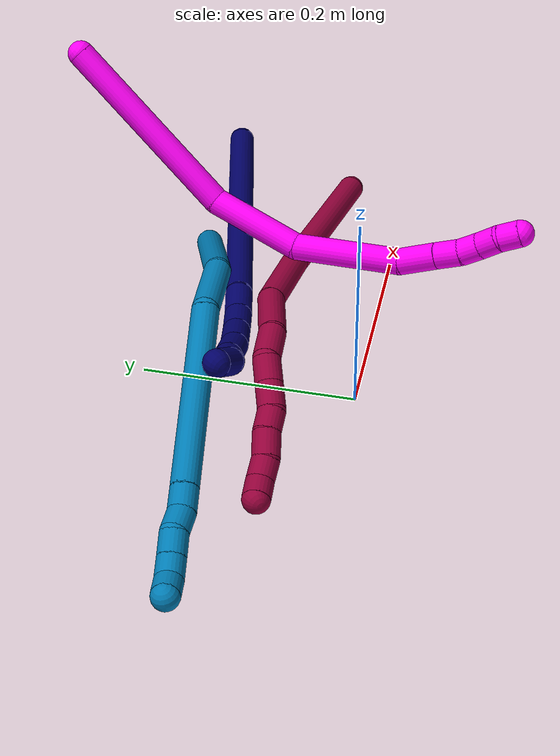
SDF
<sdf version="1.7">
 <world name="default">
  <model name="7">
   <static>0</static>
   <link name="7">
    <collision name="collision-cylinder-e_1_1_4">
     <pose>-0.103355 0.018054 0.121136 -0.147949 -0.700941 0.05417</pose>
     <geometry><cylinder><radius>0.0125</radius><length>0.320513</length></cylinder></geometry>
     <surface>
      <friction><ode><mu>1.16</mu><mu2>1.16</mu2><slip1>0</slip1><slip2>0</slip2></ode></friction>
      <contact><ode><kp>1e+06</kp><kd>1</kd><max_vel>0</max_vel><min_depth>0.001</min_depth></ode></contact>
     </surface>
    </collision>
    <visual name="visual-cylinder-e_1_1_4">
     <pose>-0.103355 0.018054 0.121136 -0.147949 -0.700941 0.05417</pose>
     <geometry><cylinder><radius>0.0125</radius><length>0.320513</length></cylinder></geometry>
     <material><ambient>0.003922 0 0.403922 1</ambient></material>
    </visual>
    <collision name="collision-cylinder-e_2_4_5">
     <pose>-0.216743 0.035461 0.253887 0.05562 -0.711643 -0.020675</pose>
     <geometry><cylinder><radius>0.0125</radius><length>0.030725</length></cylinder></geometry>
     <surface>
      <friction><ode><mu>1.16</mu><mu2>1.16</mu2><slip1>0</slip1><slip2>0</slip2></ode></friction>
      <contact><ode><kp>1e+06</kp><kd>1</kd><max_vel>0</max_vel><min_depth>0.001</min_depth></ode></contact>
     </surface>
    </collision>
    <visual name="visual-cylinder-e_2_4_5">
     <pose>-0.216743 0.035461 0.253887 0.05562 -0.711643 -0.020675</pose>
     <geometry><cylinder><radius>0.0125</radius><length>0.030725</length></cylinder></geometry>
     <material><ambient>0.003922 0 0.403922 1</ambient></material>
    </visual>
    <collision name="collision-cylinder-e_3_5_6">
     <pose>-0.23638 0.036585 0.27579 -0.170504 -0.743816 0.066644</pose>
     <geometry><cylinder><radius>0.0125</radius><length>0.028367</length></cylinder></geometry>
     <surface>
      <friction><ode><mu>1.16</mu><mu2>1.16</mu2><slip1>0</slip1><slip2>0</slip2></ode></friction>
      <contact><ode><kp>1e+06</kp><kd>1</kd><max_vel>0</max_vel><min_depth>0.001</min_depth></ode></contact>
     </surface>
    </collision>
    <visual name="visual-cylinder-e_3_5_6">
     <pose>-0.23638 0.036585 0.27579 -0.170504 -0.743816 0.066644</pose>
     <geometry><cylinder><radius>0.0125</radius><length>0.028367</length></cylinder></geometry>
     <material><ambient>0.003922 0 0.403922 1</ambient></material>
    </visual>
    <collision name="collision-cylinder-e_4_6_7">
     <pose>-0.257594 0.0436 0.298169 -0.409143 -0.722124 0.156371</pose>
     <geometry><cylinder><radius>0.0125</radius><length>0.03513</length></cylinder></geometry>
     <surface>
      <friction><ode><mu>1.16</mu><mu2>1.16</mu2><slip1>0</slip1><slip2>0</slip2></ode></friction>
      <contact><ode><kp>1e+06</kp><kd>1</kd><max_vel>0</max_vel><min_depth>0.001</min_depth></ode></contact>
     </surface>
    </collision>
    <visual name="visual-cylinder-e_4_6_7">
     <pose>-0.257594 0.0436 0.298169 -0.409143 -0.722124 0.156371</pose>
     <geometry><cylinder><radius>0.0125</radius><length>0.03513</length></cylinder></geometry>
     <material><ambient>0.003922 0 0.403922 1</ambient></material>
    </visual>
    <collision name="collision-cylinder-e_5_7_8">
     <pose>-0.281068 0.054936 0.320015 -0.558375 -0.800983 0.241559</pose>
     <geometry><cylinder><radius>0.0125</radius><length>0.033046</length></cylinder></geometry>
     <surface>
      <friction><ode><mu>1.16</mu><mu2>1.16</mu2><slip1>0</slip1><slip2>0</slip2></ode></friction>
      <contact><ode><kp>1e+06</kp><kd>1</kd><max_vel>0</max_vel><min_depth>0.001</min_depth></ode></contact>
     </surface>
    </collision>
    <visual name="visual-cylinder-e_5_7_8">
     <pose>-0.281068 0.054936 0.320015 -0.558375 -0.800983 0.241559</pose>
     <geometry><cylinder><radius>0.0125</radius><length>0.033046</length></cylinder></geometry>
     <material><ambient>0.003922 0 0.403922 1</ambient></material>
    </visual>
    <collision name="collision-cylinder-e_6_8_9">
     <pose>-0.298752 0.066431 0.337796 -0.59229 -0.541524 0.168985</pose>
     <geometry><cylinder><radius>0.0125</radius><length>0.022583</length></cylinder></geometry>
     <surface>
      <friction><ode><mu>1.16</mu><mu2>1.16</mu2><slip1>0</slip1><slip2>0</slip2></ode></friction>
      <contact><ode><kp>1e+06</kp><kd>1</kd><max_vel>0</max_vel><min_depth>0.001</min_depth></ode></contact>
     </surface>
    </collision>
    <visual name="visual-cylinder-e_6_8_9">
     <pose>-0.298752 0.066431 0.337796 -0.59229 -0.541524 0.168985</pose>
     <geometry><cylinder><radius>0.0125</radius><length>0.022583</length></cylinder></geometry>
     <material><ambient>0.003922 0 0.403922 1</ambient></material>
    </visual>
    <collision name="collision-cylinder-e_7_9_2">
     <pose>-0.316227 0.079724 0.350456 -1.04 -0.905139 0.543042</pose>
     <geometry><cylinder><radius>0.0125</radius><length>0.029637</length></cylinder></geometry>
     <surface>
      <friction><ode><mu>1.16</mu><mu2>1.16</mu2><slip1>0</slip1><slip2>0</slip2></ode></friction>
      <contact><ode><kp>1e+06</kp><kd>1</kd><max_vel>0</max_vel><min_depth>0.001</min_depth></ode></contact>
     </surface>
    </collision>
    <visual name="visual-cylinder-e_7_9_2">
     <pose>-0.316227 0.079724 0.350456 -1.04 -0.905139 0.543042</pose>
     <geometry><cylinder><radius>0.0125</radius><length>0.029637</length></cylinder></geometry>
     <material><ambient>0.003922 0 0.403922 1</ambient></material>
    </visual>
    <collision name="collision-sphere-2">
     <pose>-0.327882 0.087617 0.355089 0 -0 0</pose>
     <geometry><sphere><radius>0.0125</radius></sphere></geometry>
     <surface>
      <friction><ode><mu>1.16</mu><mu2>1.16</mu2><slip1>0</slip1><slip2>0</slip2></ode></friction>
      <contact><ode><kp>1e+06</kp><kd>1</kd><max_vel>0</max_vel><min_depth>0.001</min_depth></ode></contact>
     </surface>
    </collision>
    <visual name="visual-sphere-2">
     <pose>-0.327882 0.087617 0.355089 0 -0 0</pose>
     <geometry><sphere><radius>0.0125</radius></sphere></geometry>
     <material><ambient>0.003922 0 0.403922 1</ambient></material>
    </visual>
    <collision name="collision-sphere-9">
     <pose>-0.304572 0.071832 0.345823 0 -0 0</pose>
     <geometry><sphere><radius>0.0125</radius></sphere></geometry>
     <surface>
      <friction><ode><mu>1.16</mu><mu2>1.16</mu2><slip1>0</slip1><slip2>0</slip2></ode></friction>
      <contact><ode><kp>1e+06</kp><kd>1</kd><max_vel>0</max_vel><min_depth>0.001</min_depth></ode></contact>
     </surface>
    </collision>
    <visual name="visual-sphere-9">
     <pose>-0.304572 0.071832 0.345823 0 -0 0</pose>
     <geometry><sphere><radius>0.0125</radius></sphere></geometry>
     <material><ambient>0.003922 0 0.403922 1</ambient></material>
    </visual>
    <collision name="collision-sphere-4">
     <pose>-0.20671 0.036108 0.242271 0 -0 0</pose>
     <geometry><sphere><radius>0.0125</radius></sphere></geometry>
     <surface>
      <friction><ode><mu>1.16</mu><mu2>1.16</mu2><slip1>0</slip1><slip2>0</slip2></ode></friction>
      <contact><ode><kp>1e+06</kp><kd>1</kd><max_vel>0</max_vel><min_depth>0.001</min_depth></ode></contact>
     </surface>
    </collision>
    <visual name="visual-sphere-4">
     <pose>-0.20671 0.036108 0.242271 0 -0 0</pose>
     <geometry><sphere><radius>0.0125</radius></sphere></geometry>
     <material><ambient>0.003922 0 0.403922 1</ambient></material>
    </visual>
    <collision name="collision-sphere-1">
     <geometry><sphere><radius>0.0125</radius></sphere></geometry>
     <surface>
      <friction><ode><mu>1.16</mu><mu2>1.16</mu2><slip1>0</slip1><slip2>0</slip2></ode></friction>
      <contact><ode><kp>1e+06</kp><kd>1</kd><max_vel>0</max_vel><min_depth>0.001</min_depth></ode></contact>
     </surface>
    </collision>
    <visual name="visual-sphere-1">
     <geometry><sphere><radius>0.0125</radius></sphere></geometry>
     <material><ambient>0.003922 0 0.403922 1</ambient></material>
    </visual>
    <collision name="collision-sphere-8">
     <pose>-0.292932 0.061029 0.329768 0 -0 0</pose>
     <geometry><sphere><radius>0.0125</radius></sphere></geometry>
     <surface>
      <friction><ode><mu>1.16</mu><mu2>1.16</mu2><slip1>0</slip1><slip2>0</slip2></ode></friction>
      <contact><ode><kp>1e+06</kp><kd>1</kd><max_vel>0</max_vel><min_depth>0.001</min_depth></ode></contact>
     </surface>
    </collision>
    <visual name="visual-sphere-8">
     <pose>-0.292932 0.061029 0.329768 0 -0 0</pose>
     <geometry><sphere><radius>0.0125</radius></sphere></geometry>
     <material><ambient>0.003922 0 0.403922 1</ambient></material>
    </visual>
    <collision name="collision-sphere-5">
     <pose>-0.226776 0.034814 0.265503 0 -0 0</pose>
     <geometry><sphere><radius>0.0125</radius></sphere></geometry>
     <surface>
      <friction><ode><mu>1.16</mu><mu2>1.16</mu2><slip1>0</slip1><slip2>0</slip2></ode></friction>
      <contact><ode><kp>1e+06</kp><kd>1</kd><max_vel>0</max_vel><min_depth>0.001</min_depth></ode></contact>
     </surface>
    </collision>
    <visual name="visual-sphere-5">
     <pose>-0.226776 0.034814 0.265503 0 -0 0</pose>
     <geometry><sphere><radius>0.0125</radius></sphere></geometry>
     <material><ambient>0.003922 0 0.403922 1</ambient></material>
    </visual>
    <collision name="collision-sphere-6">
     <pose>-0.245984 0.038356 0.286076 0 -0 0</pose>
     <geometry><sphere><radius>0.0125</radius></sphere></geometry>
     <surface>
      <friction><ode><mu>1.16</mu><mu2>1.16</mu2><slip1>0</slip1><slip2>0</slip2></ode></friction>
      <contact><ode><kp>1e+06</kp><kd>1</kd><max_vel>0</max_vel><min_depth>0.001</min_depth></ode></contact>
     </surface>
    </collision>
    <visual name="visual-sphere-6">
     <pose>-0.245984 0.038356 0.286076 0 -0 0</pose>
     <geometry><sphere><radius>0.0125</radius></sphere></geometry>
     <material><ambient>0.003922 0 0.403922 1</ambient></material>
    </visual>
    <collision name="collision-sphere-7">
     <pose>-0.269204 0.048843 0.310261 0 -0 0</pose>
     <geometry><sphere><radius>0.0125</radius></sphere></geometry>
     <surface>
      <friction><ode><mu>1.16</mu><mu2>1.16</mu2><slip1>0</slip1><slip2>0</slip2></ode></friction>
      <contact><ode><kp>1e+06</kp><kd>1</kd><max_vel>0</max_vel><min_depth>0.001</min_depth></ode></contact>
     </surface>
    </collision>
    <visual name="visual-sphere-7">
     <pose>-0.269204 0.048843 0.310261 0 -0 0</pose>
     <geometry><sphere><radius>0.0125</radius></sphere></geometry>
     <material><ambient>0.003922 0 0.403922 1</ambient></material>
    </visual>
    <inertial>
     <pose>-0.161895 0.030248 0.187028 0 -0 0</pose>
     <mass>0.5</mass>
     <inertia>
      <ixx>0.002209</ixx>
      <ixy>0</ixy>
      <ixz>0</ixz>
      <iyy>0.002879</iyy>
      <iyz>0</iyz>
      <izz>0.001503</izz>
     </inertia>
    </inertial>
   </link>
   <pose>0.366978 0.190559 0.012058 1.59344 0.08374 -0.652883</pose>
  </model>
  <model name="8">
   <static>0</static>
   <link name="8">
    <collision name="collision-cylinder-e_1_1_4">
     <pose>-0.061573 -0.00766 0.070062 0.1089 -0.718054 -0.040904</pose>
     <geometry><cylinder><radius>0.0125</radius><length>0.187176</length></cylinder></geometry>
     <surface>
      <friction><ode><mu>1.16</mu><mu2>1.16</mu2><slip1>0</slip1><slip2>0</slip2></ode></friction>
      <contact><ode><kp>1e+06</kp><kd>1</kd><max_vel>0</max_vel><min_depth>0.001</min_depth></ode></contact>
     </surface>
    </collision>
    <visual name="visual-cylinder-e_1_1_4">
     <pose>-0.061573 -0.00766 0.070062 0.1089 -0.718054 -0.040904</pose>
     <geometry><cylinder><radius>0.0125</radius><length>0.187176</length></cylinder></geometry>
     <material><ambient>0.584314 0 0.227451 1</ambient></material>
    </visual>
    <collision name="collision-cylinder-e_2_4_5">
     <pose>-0.148874 -0.017781 0.172975 0.074782 -0.663033 -0.025752</pose>
     <geometry><cylinder><radius>0.0125</radius><length>0.083596</length></cylinder></geometry>
     <surface>
      <friction><ode><mu>1.16</mu><mu2>1.16</mu2><slip1>0</slip1><slip2>0</slip2></ode></friction>
      <contact><ode><kp>1e+06</kp><kd>1</kd><max_vel>0</max_vel><min_depth>0.001</min_depth></ode></contact>
     </surface>
    </collision>
    <visual name="visual-cylinder-e_2_4_5">
     <pose>-0.148874 -0.017781 0.172975 0.074782 -0.663033 -0.025752</pose>
     <geometry><cylinder><radius>0.0125</radius><length>0.083596</length></cylinder></geometry>
     <material><ambient>0.584314 0 0.227451 1</ambient></material>
    </visual>
    <collision name="collision-cylinder-e_3_5_6">
     <pose>-0.185298 -0.02254 0.233564 0.082631 -0.366913 -0.01534</pose>
     <geometry><cylinder><radius>0.0125</radius><length>0.059637</length></cylinder></geometry>
     <surface>
      <friction><ode><mu>1.16</mu><mu2>1.16</mu2><slip1>0</slip1><slip2>0</slip2></ode></friction>
      <contact><ode><kp>1e+06</kp><kd>1</kd><max_vel>0</max_vel><min_depth>0.001</min_depth></ode></contact>
     </surface>
    </collision>
    <visual name="visual-cylinder-e_3_5_6">
     <pose>-0.185298 -0.02254 0.233564 0.082631 -0.366913 -0.01534</pose>
     <geometry><cylinder><radius>0.0125</radius><length>0.059637</length></cylinder></geometry>
     <material><ambient>0.584314 0 0.227451 1</ambient></material>
    </visual>
    <collision name="collision-cylinder-e_4_6_7">
     <pose>-0.204009 -0.029949 0.27549 0.345809 -0.48845 -0.08699</pose>
     <geometry><cylinder><radius>0.0125</radius><length>0.034156</length></cylinder></geometry>
     <surface>
      <friction><ode><mu>1.16</mu><mu2>1.16</mu2><slip1>0</slip1><slip2>0</slip2></ode></friction>
      <contact><ode><kp>1e+06</kp><kd>1</kd><max_vel>0</max_vel><min_depth>0.001</min_depth></ode></contact>
     </surface>
    </collision>
    <visual name="visual-cylinder-e_4_6_7">
     <pose>-0.204009 -0.029949 0.27549 0.345809 -0.48845 -0.08699</pose>
     <geometry><cylinder><radius>0.0125</radius><length>0.034156</length></cylinder></geometry>
     <material><ambient>0.584314 0 0.227451 1</ambient></material>
    </visual>
    <collision name="collision-cylinder-e_5_7_8">
     <pose>-0.213841 -0.042553 0.299601 0.646766 -0.145237 -0.048752</pose>
     <geometry><cylinder><radius>0.0125</radius><length>0.025131</length></cylinder></geometry>
     <surface>
      <friction><ode><mu>1.16</mu><mu2>1.16</mu2><slip1>0</slip1><slip2>0</slip2></ode></friction>
      <contact><ode><kp>1e+06</kp><kd>1</kd><max_vel>0</max_vel><min_depth>0.001</min_depth></ode></contact>
     </surface>
    </collision>
    <visual name="visual-cylinder-e_5_7_8">
     <pose>-0.213841 -0.042553 0.299601 0.646766 -0.145237 -0.048752</pose>
     <geometry><cylinder><radius>0.0125</radius><length>0.025131</length></cylinder></geometry>
     <material><ambient>0.584314 0 0.227451 1</ambient></material>
    </visual>
    <collision name="collision-cylinder-e_6_8_9">
     <pose>-0.217847 -0.056671 0.319968 0.565273 -0.175046 -0.050954</pose>
     <geometry><cylinder><radius>0.0125</radius><length>0.025122</length></cylinder></geometry>
     <surface>
      <friction><ode><mu>1.16</mu><mu2>1.16</mu2><slip1>0</slip1><slip2>0</slip2></ode></friction>
      <contact><ode><kp>1e+06</kp><kd>1</kd><max_vel>0</max_vel><min_depth>0.001</min_depth></ode></contact>
     </surface>
    </collision>
    <visual name="visual-cylinder-e_6_8_9">
     <pose>-0.217847 -0.056671 0.319968 0.565273 -0.175046 -0.050954</pose>
     <geometry><cylinder><radius>0.0125</radius><length>0.025122</length></cylinder></geometry>
     <material><ambient>0.584314 0 0.227451 1</ambient></material>
    </visual>
    <collision name="collision-cylinder-e_7_9_10">
     <pose>-0.224435 -0.069553 0.337367 0.732676 -0.439627 -0.171018</pose>
     <geometry><cylinder><radius>0.0125</radius><length>0.020676</length></cylinder></geometry>
     <surface>
      <friction><ode><mu>1.16</mu><mu2>1.16</mu2><slip1>0</slip1><slip2>0</slip2></ode></friction>
      <contact><ode><kp>1e+06</kp><kd>1</kd><max_vel>0</max_vel><min_depth>0.001</min_depth></ode></contact>
     </surface>
    </collision>
    <visual name="visual-cylinder-e_7_9_10">
     <pose>-0.224435 -0.069553 0.337367 0.732676 -0.439627 -0.171018</pose>
     <geometry><cylinder><radius>0.0125</radius><length>0.020676</length></cylinder></geometry>
     <material><ambient>0.584314 0 0.227451 1</ambient></material>
    </visual>
    <collision name="collision-cylinder-e_8_10_11">
     <pose>-0.231866 -0.083507 0.35326 0.710882 -0.251572 -0.093812</pose>
     <geometry><cylinder><radius>0.0125</radius><length>0.024358</length></cylinder></geometry>
     <surface>
      <friction><ode><mu>1.16</mu><mu2>1.16</mu2><slip1>0</slip1><slip2>0</slip2></ode></friction>
      <contact><ode><kp>1e+06</kp><kd>1</kd><max_vel>0</max_vel><min_depth>0.001</min_depth></ode></contact>
     </surface>
    </collision>
    <visual name="visual-cylinder-e_8_10_11">
     <pose>-0.231866 -0.083507 0.35326 0.710882 -0.251572 -0.093812</pose>
     <geometry><cylinder><radius>0.0125</radius><length>0.024358</length></cylinder></geometry>
     <material><ambient>0.584314 0 0.227451 1</ambient></material>
    </visual>
    <collision name="collision-cylinder-e_9_11_12">
     <pose>-0.239093 -0.098138 0.368127 0.863394 -0.431016 -0.201012</pose>
     <geometry><cylinder><radius>0.0125</radius><length>0.020083</length></cylinder></geometry>
     <surface>
      <friction><ode><mu>1.16</mu><mu2>1.16</mu2><slip1>0</slip1><slip2>0</slip2></ode></friction>
      <contact><ode><kp>1e+06</kp><kd>1</kd><max_vel>0</max_vel><min_depth>0.001</min_depth></ode></contact>
     </surface>
    </collision>
    <visual name="visual-cylinder-e_9_11_12">
     <pose>-0.239093 -0.098138 0.368127 0.863394 -0.431016 -0.201012</pose>
     <geometry><cylinder><radius>0.0125</radius><length>0.020083</length></cylinder></geometry>
     <material><ambient>0.584314 0 0.227451 1</ambient></material>
    </visual>
    <collision name="collision-cylinder-e_10_12_2">
     <pose>-0.247921 -0.108537 0.382253 0.399948 -0.479907 -0.099099</pose>
     <geometry><cylinder><radius>0.0125</radius><length>0.020066</length></cylinder></geometry>
     <surface>
      <friction><ode><mu>1.16</mu><mu2>1.16</mu2><slip1>0</slip1><slip2>0</slip2></ode></friction>
      <contact><ode><kp>1e+06</kp><kd>1</kd><max_vel>0</max_vel><min_depth>0.001</min_depth></ode></contact>
     </surface>
    </collision>
    <visual name="visual-cylinder-e_10_12_2">
     <pose>-0.247921 -0.108537 0.382253 0.399948 -0.479907 -0.099099</pose>
     <geometry><cylinder><radius>0.0125</radius><length>0.020066</length></cylinder></geometry>
     <material><ambient>0.584314 0 0.227451 1</ambient></material>
    </visual>
    <collision name="collision-sphere-2">
     <pose>-0.252553 -0.112003 0.39045 0 -0 0</pose>
     <geometry><sphere><radius>0.0125</radius></sphere></geometry>
     <surface>
      <friction><ode><mu>1.16</mu><mu2>1.16</mu2><slip1>0</slip1><slip2>0</slip2></ode></friction>
      <contact><ode><kp>1e+06</kp><kd>1</kd><max_vel>0</max_vel><min_depth>0.001</min_depth></ode></contact>
     </surface>
    </collision>
    <visual name="visual-sphere-2">
     <pose>-0.252553 -0.112003 0.39045 0 -0 0</pose>
     <geometry><sphere><radius>0.0125</radius></sphere></geometry>
     <material><ambient>0.584314 0 0.227451 1</ambient></material>
    </visual>
    <collision name="collision-sphere-12">
     <pose>-0.243288 -0.105072 0.374056 0 -0 0</pose>
     <geometry><sphere><radius>0.0125</radius></sphere></geometry>
     <surface>
      <friction><ode><mu>1.16</mu><mu2>1.16</mu2><slip1>0</slip1><slip2>0</slip2></ode></friction>
      <contact><ode><kp>1e+06</kp><kd>1</kd><max_vel>0</max_vel><min_depth>0.001</min_depth></ode></contact>
     </surface>
    </collision>
    <visual name="visual-sphere-12">
     <pose>-0.243288 -0.105072 0.374056 0 -0 0</pose>
     <geometry><sphere><radius>0.0125</radius></sphere></geometry>
     <material><ambient>0.584314 0 0.227451 1</ambient></material>
    </visual>
    <collision name="collision-sphere-11">
     <pose>-0.234898 -0.091204 0.362199 0 -0 0</pose>
     <geometry><sphere><radius>0.0125</radius></sphere></geometry>
     <surface>
      <friction><ode><mu>1.16</mu><mu2>1.16</mu2><slip1>0</slip1><slip2>0</slip2></ode></friction>
      <contact><ode><kp>1e+06</kp><kd>1</kd><max_vel>0</max_vel><min_depth>0.001</min_depth></ode></contact>
     </surface>
    </collision>
    <visual name="visual-sphere-11">
     <pose>-0.234898 -0.091204 0.362199 0 -0 0</pose>
     <geometry><sphere><radius>0.0125</radius></sphere></geometry>
     <material><ambient>0.584314 0 0.227451 1</ambient></material>
    </visual>
    <collision name="collision-sphere-10">
     <pose>-0.228835 -0.075811 0.344321 0 -0 0</pose>
     <geometry><sphere><radius>0.0125</radius></sphere></geometry>
     <surface>
      <friction><ode><mu>1.16</mu><mu2>1.16</mu2><slip1>0</slip1><slip2>0</slip2></ode></friction>
      <contact><ode><kp>1e+06</kp><kd>1</kd><max_vel>0</max_vel><min_depth>0.001</min_depth></ode></contact>
     </surface>
    </collision>
    <visual name="visual-sphere-10">
     <pose>-0.228835 -0.075811 0.344321 0 -0 0</pose>
     <geometry><sphere><radius>0.0125</radius></sphere></geometry>
     <material><ambient>0.584314 0 0.227451 1</ambient></material>
    </visual>
    <collision name="collision-sphere-9">
     <pose>-0.220035 -0.063296 0.330412 0 -0 0</pose>
     <geometry><sphere><radius>0.0125</radius></sphere></geometry>
     <surface>
      <friction><ode><mu>1.16</mu><mu2>1.16</mu2><slip1>0</slip1><slip2>0</slip2></ode></friction>
      <contact><ode><kp>1e+06</kp><kd>1</kd><max_vel>0</max_vel><min_depth>0.001</min_depth></ode></contact>
     </surface>
    </collision>
    <visual name="visual-sphere-9">
     <pose>-0.220035 -0.063296 0.330412 0 -0 0</pose>
     <geometry><sphere><radius>0.0125</radius></sphere></geometry>
     <material><ambient>0.584314 0 0.227451 1</ambient></material>
    </visual>
    <collision name="collision-sphere-4">
     <pose>-0.123147 -0.01532 0.140125 0 -0 0</pose>
     <geometry><sphere><radius>0.0125</radius></sphere></geometry>
     <surface>
      <friction><ode><mu>1.16</mu><mu2>1.16</mu2><slip1>0</slip1><slip2>0</slip2></ode></friction>
      <contact><ode><kp>1e+06</kp><kd>1</kd><max_vel>0</max_vel><min_depth>0.001</min_depth></ode></contact>
     </surface>
    </collision>
    <visual name="visual-sphere-4">
     <pose>-0.123147 -0.01532 0.140125 0 -0 0</pose>
     <geometry><sphere><radius>0.0125</radius></sphere></geometry>
     <material><ambient>0.584314 0 0.227451 1</ambient></material>
    </visual>
    <collision name="collision-sphere-1">
     <geometry><sphere><radius>0.0125</radius></sphere></geometry>
     <surface>
      <friction><ode><mu>1.16</mu><mu2>1.16</mu2><slip1>0</slip1><slip2>0</slip2></ode></friction>
      <contact><ode><kp>1e+06</kp><kd>1</kd><max_vel>0</max_vel><min_depth>0.001</min_depth></ode></contact>
     </surface>
    </collision>
    <visual name="visual-sphere-1">
     <geometry><sphere><radius>0.0125</radius></sphere></geometry>
     <material><ambient>0.584314 0 0.227451 1</ambient></material>
    </visual>
    <collision name="collision-sphere-8">
     <pose>-0.21566 -0.050046 0.309523 0 -0 0</pose>
     <geometry><sphere><radius>0.0125</radius></sphere></geometry>
     <surface>
      <friction><ode><mu>1.16</mu><mu2>1.16</mu2><slip1>0</slip1><slip2>0</slip2></ode></friction>
      <contact><ode><kp>1e+06</kp><kd>1</kd><max_vel>0</max_vel><min_depth>0.001</min_depth></ode></contact>
     </surface>
    </collision>
    <visual name="visual-sphere-8">
     <pose>-0.21566 -0.050046 0.309523 0 -0 0</pose>
     <geometry><sphere><radius>0.0125</radius></sphere></geometry>
     <material><ambient>0.584314 0 0.227451 1</ambient></material>
    </visual>
    <collision name="collision-sphere-5">
     <pose>-0.174601 -0.020243 0.205825 0 -0 0</pose>
     <geometry><sphere><radius>0.0125</radius></sphere></geometry>
     <surface>
      <friction><ode><mu>1.16</mu><mu2>1.16</mu2><slip1>0</slip1><slip2>0</slip2></ode></friction>
      <contact><ode><kp>1e+06</kp><kd>1</kd><max_vel>0</max_vel><min_depth>0.001</min_depth></ode></contact>
     </surface>
    </collision>
    <visual name="visual-sphere-5">
     <pose>-0.174601 -0.020243 0.205825 0 -0 0</pose>
     <geometry><sphere><radius>0.0125</radius></sphere></geometry>
     <material><ambient>0.584314 0 0.227451 1</ambient></material>
    </visual>
    <collision name="collision-sphere-6">
     <pose>-0.195995 -0.024837 0.261302 0 -0 0</pose>
     <geometry><sphere><radius>0.0125</radius></sphere></geometry>
     <surface>
      <friction><ode><mu>1.16</mu><mu2>1.16</mu2><slip1>0</slip1><slip2>0</slip2></ode></friction>
      <contact><ode><kp>1e+06</kp><kd>1</kd><max_vel>0</max_vel><min_depth>0.001</min_depth></ode></contact>
     </surface>
    </collision>
    <visual name="visual-sphere-6">
     <pose>-0.195995 -0.024837 0.261302 0 -0 0</pose>
     <geometry><sphere><radius>0.0125</radius></sphere></geometry>
     <material><ambient>0.584314 0 0.227451 1</ambient></material>
    </visual>
    <collision name="collision-sphere-7">
     <pose>-0.212023 -0.035061 0.289678 0 -0 0</pose>
     <geometry><sphere><radius>0.0125</radius></sphere></geometry>
     <surface>
      <friction><ode><mu>1.16</mu><mu2>1.16</mu2><slip1>0</slip1><slip2>0</slip2></ode></friction>
      <contact><ode><kp>1e+06</kp><kd>1</kd><max_vel>0</max_vel><min_depth>0.001</min_depth></ode></contact>
     </surface>
    </collision>
    <visual name="visual-sphere-7">
     <pose>-0.212023 -0.035061 0.289678 0 -0 0</pose>
     <geometry><sphere><radius>0.0125</radius></sphere></geometry>
     <material><ambient>0.584314 0 0.227451 1</ambient></material>
    </visual>
    <inertial>
     <pose>-0.145801 -0.030803 0.194247 0 -0 0</pose>
     <mass>0.5</mass>
     <inertia>
      <ixx>0.000451</ixx>
      <ixy>0</ixy>
      <ixz>0</ixz>
      <iyy>0.000608</iyy>
      <iyz>0</iyz>
      <izz>0.000497</izz>
     </inertia>
    </inertial>
   </link>
   <pose>0.300325 0.058394 0.014602 1.37254 0.227509 -0.998571</pose>
  </model>
  <model name="9">
   <static>0</static>
   <link name="9">
    <collision name="collision-cylinder-e_1_1_4">
     <pose>-0.057366 -0.026877 0.034032 0.668463 -0.923506 -0.342236</pose>
     <geometry><cylinder><radius>0.0125</radius><length>0.143825</length></cylinder></geometry>
     <surface>
      <friction><ode><mu>1.16</mu><mu2>1.16</mu2><slip1>0</slip1><slip2>0</slip2></ode></friction>
      <contact><ode><kp>1e+06</kp><kd>1</kd><max_vel>0</max_vel><min_depth>0.001</min_depth></ode></contact>
     </surface>
    </collision>
    <visual name="visual-cylinder-e_1_1_4">
     <pose>-0.057366 -0.026877 0.034032 0.668463 -0.923506 -0.342236</pose>
     <geometry><cylinder><radius>0.0125</radius><length>0.143825</length></cylinder></geometry>
     <material><ambient>0 0.490196 0.709804 1</ambient></material>
    </visual>
    <collision name="collision-cylinder-e_2_4_5">
     <pose>-0.148872 -0.058768 0.076074 0.559295 -1.30075 -0.430201</pose>
     <geometry><cylinder><radius>0.0125</radius><length>0.070846</length></cylinder></geometry>
     <surface>
      <friction><ode><mu>1.16</mu><mu2>1.16</mu2><slip1>0</slip1><slip2>0</slip2></ode></friction>
      <contact><ode><kp>1e+06</kp><kd>1</kd><max_vel>0</max_vel><min_depth>0.001</min_depth></ode></contact>
     </surface>
    </collision>
    <visual name="visual-cylinder-e_2_4_5">
     <pose>-0.148872 -0.058768 0.076074 0.559295 -1.30075 -0.430201</pose>
     <geometry><cylinder><radius>0.0125</radius><length>0.070846</length></cylinder></geometry>
     <material><ambient>0 0.490196 0.709804 1</ambient></material>
    </visual>
    <collision name="collision-cylinder-e_3_5_6">
     <pose>-0.270064 -0.072936 0.065361 2.68683 -1.33581 -2.57097</pose>
     <geometry><cylinder><radius>0.0125</radius><length>0.179026</length></cylinder></geometry>
     <surface>
      <friction><ode><mu>1.16</mu><mu2>1.16</mu2><slip1>0</slip1><slip2>0</slip2></ode></friction>
      <contact><ode><kp>1e+06</kp><kd>1</kd><max_vel>0</max_vel><min_depth>0.001</min_depth></ode></contact>
     </surface>
    </collision>
    <visual name="visual-cylinder-e_3_5_6">
     <pose>-0.270064 -0.072936 0.065361 2.68683 -1.33581 -2.57097</pose>
     <geometry><cylinder><radius>0.0125</radius><length>0.179026</length></cylinder></geometry>
     <material><ambient>0 0.490196 0.709804 1</ambient></material>
    </visual>
    <collision name="collision-cylinder-e_4_6_7">
     <pose>-0.367949 -0.083133 0.044037 2.76032 -1.31761 -2.65301</pose>
     <geometry><cylinder><radius>0.0125</radius><length>0.022376</length></cylinder></geometry>
     <surface>
      <friction><ode><mu>1.16</mu><mu2>1.16</mu2><slip1>0</slip1><slip2>0</slip2></ode></friction>
      <contact><ode><kp>1e+06</kp><kd>1</kd><max_vel>0</max_vel><min_depth>0.001</min_depth></ode></contact>
     </surface>
    </collision>
    <visual name="visual-cylinder-e_4_6_7">
     <pose>-0.367949 -0.083133 0.044037 2.76032 -1.31761 -2.65301</pose>
     <geometry><cylinder><radius>0.0125</radius><length>0.022376</length></cylinder></geometry>
     <material><ambient>0 0.490196 0.709804 1</ambient></material>
    </visual>
    <collision name="collision-cylinder-e_5_7_8">
     <pose>-0.389692 -0.084028 0.041816 -0.370459 -1.53342 0.357157</pose>
     <geometry><cylinder><radius>0.0125</radius><length>0.021841</length></cylinder></geometry>
     <surface>
      <friction><ode><mu>1.16</mu><mu2>1.16</mu2><slip1>0</slip1><slip2>0</slip2></ode></friction>
      <contact><ode><kp>1e+06</kp><kd>1</kd><max_vel>0</max_vel><min_depth>0.001</min_depth></ode></contact>
     </surface>
    </collision>
    <visual name="visual-cylinder-e_5_7_8">
     <pose>-0.389692 -0.084028 0.041816 -0.370459 -1.53342 0.357157</pose>
     <geometry><cylinder><radius>0.0125</radius><length>0.021841</length></cylinder></geometry>
     <material><ambient>0 0.490196 0.709804 1</ambient></material>
    </visual>
    <collision name="collision-cylinder-e_6_8_9">
     <pose>-0.410846 -0.08476 0.039011 2.87244 -1.25863 -2.77386</pose>
     <geometry><cylinder><radius>0.0125</radius><length>0.021521</length></cylinder></geometry>
     <surface>
      <friction><ode><mu>1.16</mu><mu2>1.16</mu2><slip1>0</slip1><slip2>0</slip2></ode></friction>
      <contact><ode><kp>1e+06</kp><kd>1</kd><max_vel>0</max_vel><min_depth>0.001</min_depth></ode></contact>
     </surface>
    </collision>
    <visual name="visual-cylinder-e_6_8_9">
     <pose>-0.410846 -0.08476 0.039011 2.87244 -1.25863 -2.77386</pose>
     <geometry><cylinder><radius>0.0125</radius><length>0.021521</length></cylinder></geometry>
     <material><ambient>0 0.490196 0.709804 1</ambient></material>
    </visual>
    <collision name="collision-cylinder-e_7_9_10">
     <pose>-0.430896 -0.086654 0.033656 2.70359 -1.33135 -2.58919</pose>
     <geometry><cylinder><radius>0.0125</radius><length>0.020197</length></cylinder></geometry>
     <surface>
      <friction><ode><mu>1.16</mu><mu2>1.16</mu2><slip1>0</slip1><slip2>0</slip2></ode></friction>
      <contact><ode><kp>1e+06</kp><kd>1</kd><max_vel>0</max_vel><min_depth>0.001</min_depth></ode></contact>
     </surface>
    </collision>
    <visual name="visual-cylinder-e_7_9_10">
     <pose>-0.430896 -0.086654 0.033656 2.70359 -1.33135 -2.58919</pose>
     <geometry><cylinder><radius>0.0125</radius><length>0.020197</length></cylinder></geometry>
     <material><ambient>0 0.490196 0.709804 1</ambient></material>
    </visual>
    <collision name="collision-cylinder-e_8_10_2">
     <pose>-0.450362 -0.089563 0.034114 0.624521 -1.24725 -0.456383</pose>
     <geometry><cylinder><radius>0.0125</radius><length>0.020368</length></cylinder></geometry>
     <surface>
      <friction><ode><mu>1.16</mu><mu2>1.16</mu2><slip1>0</slip1><slip2>0</slip2></ode></friction>
      <contact><ode><kp>1e+06</kp><kd>1</kd><max_vel>0</max_vel><min_depth>0.001</min_depth></ode></contact>
     </surface>
    </collision>
    <visual name="visual-cylinder-e_8_10_2">
     <pose>-0.450362 -0.089563 0.034114 0.624521 -1.24725 -0.456383</pose>
     <geometry><cylinder><radius>0.0125</radius><length>0.020368</length></cylinder></geometry>
     <material><ambient>0 0.490196 0.709804 1</ambient></material>
    </visual>
    <collision name="collision-sphere-2">
     <pose>-0.460018 -0.091456 0.036741 0 -0 0</pose>
     <geometry><sphere><radius>0.0125</radius></sphere></geometry>
     <surface>
      <friction><ode><mu>1.16</mu><mu2>1.16</mu2><slip1>0</slip1><slip2>0</slip2></ode></friction>
      <contact><ode><kp>1e+06</kp><kd>1</kd><max_vel>0</max_vel><min_depth>0.001</min_depth></ode></contact>
     </surface>
    </collision>
    <visual name="visual-sphere-2">
     <pose>-0.460018 -0.091456 0.036741 0 -0 0</pose>
     <geometry><sphere><radius>0.0125</radius></sphere></geometry>
     <material><ambient>0 0.490196 0.709804 1</ambient></material>
    </visual>
    <collision name="collision-sphere-10">
     <pose>-0.440706 -0.08767 0.031487 0 -0 0</pose>
     <geometry><sphere><radius>0.0125</radius></sphere></geometry>
     <surface>
      <friction><ode><mu>1.16</mu><mu2>1.16</mu2><slip1>0</slip1><slip2>0</slip2></ode></friction>
      <contact><ode><kp>1e+06</kp><kd>1</kd><max_vel>0</max_vel><min_depth>0.001</min_depth></ode></contact>
     </surface>
    </collision>
    <visual name="visual-sphere-10">
     <pose>-0.440706 -0.08767 0.031487 0 -0 0</pose>
     <geometry><sphere><radius>0.0125</radius></sphere></geometry>
     <material><ambient>0 0.490196 0.709804 1</ambient></material>
    </visual>
    <collision name="collision-sphere-9">
     <pose>-0.421086 -0.085638 0.035825 0 -0 0</pose>
     <geometry><sphere><radius>0.0125</radius></sphere></geometry>
     <surface>
      <friction><ode><mu>1.16</mu><mu2>1.16</mu2><slip1>0</slip1><slip2>0</slip2></ode></friction>
      <contact><ode><kp>1e+06</kp><kd>1</kd><max_vel>0</max_vel><min_depth>0.001</min_depth></ode></contact>
     </surface>
    </collision>
    <visual name="visual-sphere-9">
     <pose>-0.421086 -0.085638 0.035825 0 -0 0</pose>
     <geometry><sphere><radius>0.0125</radius></sphere></geometry>
     <material><ambient>0 0.490196 0.709804 1</ambient></material>
    </visual>
    <collision name="collision-sphere-4">
     <pose>-0.114732 -0.053754 0.068064 0 -0 0</pose>
     <geometry><sphere><radius>0.0125</radius></sphere></geometry>
     <surface>
      <friction><ode><mu>1.16</mu><mu2>1.16</mu2><slip1>0</slip1><slip2>0</slip2></ode></friction>
      <contact><ode><kp>1e+06</kp><kd>1</kd><max_vel>0</max_vel><min_depth>0.001</min_depth></ode></contact>
     </surface>
    </collision>
    <visual name="visual-sphere-4">
     <pose>-0.114732 -0.053754 0.068064 0 -0 0</pose>
     <geometry><sphere><radius>0.0125</radius></sphere></geometry>
     <material><ambient>0 0.490196 0.709804 1</ambient></material>
    </visual>
    <collision name="collision-sphere-1">
     <geometry><sphere><radius>0.0125</radius></sphere></geometry>
     <surface>
      <friction><ode><mu>1.16</mu><mu2>1.16</mu2><slip1>0</slip1><slip2>0</slip2></ode></friction>
      <contact><ode><kp>1e+06</kp><kd>1</kd><max_vel>0</max_vel><min_depth>0.001</min_depth></ode></contact>
     </surface>
    </collision>
    <visual name="visual-sphere-1">
     <geometry><sphere><radius>0.0125</radius></sphere></geometry>
     <material><ambient>0 0.490196 0.709804 1</ambient></material>
    </visual>
    <collision name="collision-sphere-8">
     <pose>-0.400605 -0.083881 0.042196 0 -0 0</pose>
     <geometry><sphere><radius>0.0125</radius></sphere></geometry>
     <surface>
      <friction><ode><mu>1.16</mu><mu2>1.16</mu2><slip1>0</slip1><slip2>0</slip2></ode></friction>
      <contact><ode><kp>1e+06</kp><kd>1</kd><max_vel>0</max_vel><min_depth>0.001</min_depth></ode></contact>
     </surface>
    </collision>
    <visual name="visual-sphere-8">
     <pose>-0.400605 -0.083881 0.042196 0 -0 0</pose>
     <geometry><sphere><radius>0.0125</radius></sphere></geometry>
     <material><ambient>0 0.490196 0.709804 1</ambient></material>
    </visual>
    <collision name="collision-sphere-5">
     <pose>-0.183011 -0.063782 0.084084 0 -0 0</pose>
     <geometry><sphere><radius>0.0125</radius></sphere></geometry>
     <surface>
      <friction><ode><mu>1.16</mu><mu2>1.16</mu2><slip1>0</slip1><slip2>0</slip2></ode></friction>
      <contact><ode><kp>1e+06</kp><kd>1</kd><max_vel>0</max_vel><min_depth>0.001</min_depth></ode></contact>
     </surface>
    </collision>
    <visual name="visual-sphere-5">
     <pose>-0.183011 -0.063782 0.084084 0 -0 0</pose>
     <geometry><sphere><radius>0.0125</radius></sphere></geometry>
     <material><ambient>0 0.490196 0.709804 1</ambient></material>
    </visual>
    <collision name="collision-sphere-6">
     <pose>-0.357117 -0.082091 0.046638 0 -0 0</pose>
     <geometry><sphere><radius>0.0125</radius></sphere></geometry>
     <surface>
      <friction><ode><mu>1.16</mu><mu2>1.16</mu2><slip1>0</slip1><slip2>0</slip2></ode></friction>
      <contact><ode><kp>1e+06</kp><kd>1</kd><max_vel>0</max_vel><min_depth>0.001</min_depth></ode></contact>
     </surface>
    </collision>
    <visual name="visual-sphere-6">
     <pose>-0.357117 -0.082091 0.046638 0 -0 0</pose>
     <geometry><sphere><radius>0.0125</radius></sphere></geometry>
     <material><ambient>0 0.490196 0.709804 1</ambient></material>
    </visual>
    <collision name="collision-sphere-7">
     <pose>-0.37878 -0.084176 0.041436 0 -0 0</pose>
     <geometry><sphere><radius>0.0125</radius></sphere></geometry>
     <surface>
      <friction><ode><mu>1.16</mu><mu2>1.16</mu2><slip1>0</slip1><slip2>0</slip2></ode></friction>
      <contact><ode><kp>1e+06</kp><kd>1</kd><max_vel>0</max_vel><min_depth>0.001</min_depth></ode></contact>
     </surface>
    </collision>
    <visual name="visual-sphere-7">
     <pose>-0.37878 -0.084176 0.041436 0 -0 0</pose>
     <geometry><sphere><radius>0.0125</radius></sphere></geometry>
     <material><ambient>0 0.490196 0.709804 1</ambient></material>
    </visual>
    <inertial>
     <pose>-0.221216 -0.060361 0.052197 0 -0 0</pose>
     <mass>0.5</mass>
     <inertia>
      <ixx>-9.7e-05</ixx>
      <ixy>0</ixy>
      <ixz>0</ixz>
      <iyy>0.000624</iyy>
      <iyz>0</iyz>
      <izz>0.000866</izz>
     </inertia>
    </inertial>
   </link>
   <pose>0.172537 0.178578 0.021678 -0.182411 -0.081883 -0.010546</pose>
  </model>
  <model name="10">
   <static>0</static>
   <link name="10">
    <collision name="collision-cylinder-e_1_1_4">
     <pose>-0.020411 0.001518 -0.092245 -3.12514 -0.217732 2.99136</pose>
     <geometry><cylinder><radius>0.0125</radius><length>0.188976</length></cylinder></geometry>
     <surface>
      <friction><ode><mu>1.16</mu><mu2>1.16</mu2><slip1>0</slip1><slip2>0</slip2></ode></friction>
      <contact><ode><kp>1e+06</kp><kd>1</kd><max_vel>0</max_vel><min_depth>0.001</min_depth></ode></contact>
     </surface>
    </collision>
    <visual name="visual-cylinder-e_1_1_4">
     <pose>-0.020411 0.001518 -0.092245 -3.12514 -0.217732 2.99136</pose>
     <geometry><cylinder><radius>0.0125</radius><length>0.188976</length></cylinder></geometry>
     <material><ambient>1 0 0.964706 1</ambient></material>
    </visual>
    <collision name="collision-cylinder-e_2_4_5">
     <pose>-0.050658 -0.015019 -0.224477 2.7175 -0.220547 -0.950059</pose>
     <geometry><cylinder><radius>0.0125</radius><length>0.089928</length></cylinder></geometry>
     <surface>
      <friction><ode><mu>1.16</mu><mu2>1.16</mu2><slip1>0</slip1><slip2>0</slip2></ode></friction>
      <contact><ode><kp>1e+06</kp><kd>1</kd><max_vel>0</max_vel><min_depth>0.001</min_depth></ode></contact>
     </surface>
    </collision>
    <visual name="visual-cylinder-e_2_4_5">
     <pose>-0.050658 -0.015019 -0.224477 2.7175 -0.220547 -0.950059</pose>
     <geometry><cylinder><radius>0.0125</radius><length>0.089928</length></cylinder></geometry>
     <material><ambient>1 0 0.964706 1</ambient></material>
    </visual>
    <collision name="collision-cylinder-e_3_5_6">
     <pose>-0.06091 -0.066878 -0.302451 2.41438 -0.008165 -0.021456</pose>
     <geometry><cylinder><radius>0.0125</radius><length>0.101702</length></cylinder></geometry>
     <surface>
      <friction><ode><mu>1.16</mu><mu2>1.16</mu2><slip1>0</slip1><slip2>0</slip2></ode></friction>
      <contact><ode><kp>1e+06</kp><kd>1</kd><max_vel>0</max_vel><min_depth>0.001</min_depth></ode></contact>
     </surface>
    </collision>
    <visual name="visual-cylinder-e_3_5_6">
     <pose>-0.06091 -0.066878 -0.302451 2.41438 -0.008165 -0.021456</pose>
     <geometry><cylinder><radius>0.0125</radius><length>0.101702</length></cylinder></geometry>
     <material><ambient>1 0 0.964706 1</ambient></material>
    </visual>
    <collision name="collision-cylinder-e_4_6_7">
     <pose>-0.059375 -0.115691 -0.349946 2.13548 0.10932 0.19821</pose>
     <geometry><cylinder><radius>0.0125</radius><length>0.035748</length></cylinder></geometry>
     <surface>
      <friction><ode><mu>1.16</mu><mu2>1.16</mu2><slip1>0</slip1><slip2>0</slip2></ode></friction>
      <contact><ode><kp>1e+06</kp><kd>1</kd><max_vel>0</max_vel><min_depth>0.001</min_depth></ode></contact>
     </surface>
    </collision>
    <visual name="visual-cylinder-e_4_6_7">
     <pose>-0.059375 -0.115691 -0.349946 2.13548 0.10932 0.19821</pose>
     <geometry><cylinder><radius>0.0125</radius><length>0.035748</length></cylinder></geometry>
     <material><ambient>1 0 0.964706 1</ambient></material>
    </visual>
    <collision name="collision-cylinder-e_5_7_8">
     <pose>-0.056009 -0.140238 -0.365962 2.16958 0.122011 0.230228</pose>
     <geometry><cylinder><radius>0.0125</radius><length>0.023266</length></cylinder></geometry>
     <surface>
      <friction><ode><mu>1.16</mu><mu2>1.16</mu2><slip1>0</slip1><slip2>0</slip2></ode></friction>
      <contact><ode><kp>1e+06</kp><kd>1</kd><max_vel>0</max_vel><min_depth>0.001</min_depth></ode></contact>
     </surface>
    </collision>
    <visual name="visual-cylinder-e_5_7_8">
     <pose>-0.056009 -0.140238 -0.365962 2.16958 0.122011 0.230228</pose>
     <geometry><cylinder><radius>0.0125</radius><length>0.023266</length></cylinder></geometry>
     <material><ambient>1 0 0.964706 1</ambient></material>
    </visual>
    <collision name="collision-cylinder-e_6_8_9">
     <pose>-0.052827 -0.15882 -0.376478 1.9879 0.176703 0.270617</pose>
     <geometry><cylinder><radius>0.0125</radius><length>0.020098</length></cylinder></geometry>
     <surface>
      <friction><ode><mu>1.16</mu><mu2>1.16</mu2><slip1>0</slip1><slip2>0</slip2></ode></friction>
      <contact><ode><kp>1e+06</kp><kd>1</kd><max_vel>0</max_vel><min_depth>0.001</min_depth></ode></contact>
     </surface>
    </collision>
    <visual name="visual-cylinder-e_6_8_9">
     <pose>-0.052827 -0.15882 -0.376478 1.9879 0.176703 0.270617</pose>
     <geometry><cylinder><radius>0.0125</radius><length>0.020098</length></cylinder></geometry>
     <material><ambient>1 0 0.964706 1</ambient></material>
    </visual>
    <collision name="collision-cylinder-e_7_9_10">
     <pose>-0.050602 -0.177513 -0.383409 1.86503 0.045438 0.061239</pose>
     <geometry><cylinder><radius>0.0125</radius><length>0.020184</length></cylinder></geometry>
     <surface>
      <friction><ode><mu>1.16</mu><mu2>1.16</mu2><slip1>0</slip1><slip2>0</slip2></ode></friction>
      <contact><ode><kp>1e+06</kp><kd>1</kd><max_vel>0</max_vel><min_depth>0.001</min_depth></ode></contact>
     </surface>
    </collision>
    <visual name="visual-cylinder-e_7_9_10">
     <pose>-0.050602 -0.177513 -0.383409 1.86503 0.045438 0.061239</pose>
     <geometry><cylinder><radius>0.0125</radius><length>0.020184</length></cylinder></geometry>
     <material><ambient>1 0 0.964706 1</ambient></material>
    </visual>
    <collision name="collision-cylinder-e_8_10_2">
     <pose>-0.048125 -0.195606 -0.391391 2.11044 0.202275 0.354401</pose>
     <geometry><cylinder><radius>0.0125</radius><length>0.020097</length></cylinder></geometry>
     <surface>
      <friction><ode><mu>1.16</mu><mu2>1.16</mu2><slip1>0</slip1><slip2>0</slip2></ode></friction>
      <contact><ode><kp>1e+06</kp><kd>1</kd><max_vel>0</max_vel><min_depth>0.001</min_depth></ode></contact>
     </surface>
    </collision>
    <visual name="visual-cylinder-e_8_10_2">
     <pose>-0.048125 -0.195606 -0.391391 2.11044 0.202275 0.354401</pose>
     <geometry><cylinder><radius>0.0125</radius><length>0.020097</length></cylinder></geometry>
     <material><ambient>1 0 0.964706 1</ambient></material>
    </visual>
    <collision name="collision-sphere-2">
     <pose>-0.046106 -0.204051 -0.396449 0 -0 0</pose>
     <geometry><sphere><radius>0.0125</radius></sphere></geometry>
     <surface>
      <friction><ode><mu>1.16</mu><mu2>1.16</mu2><slip1>0</slip1><slip2>0</slip2></ode></friction>
      <contact><ode><kp>1e+06</kp><kd>1</kd><max_vel>0</max_vel><min_depth>0.001</min_depth></ode></contact>
     </surface>
    </collision>
    <visual name="visual-sphere-2">
     <pose>-0.046106 -0.204051 -0.396449 0 -0 0</pose>
     <geometry><sphere><radius>0.0125</radius></sphere></geometry>
     <material><ambient>1 0 0.964706 1</ambient></material>
    </visual>
    <collision name="collision-sphere-10">
     <pose>-0.050143 -0.187162 -0.386333 0 -0 0</pose>
     <geometry><sphere><radius>0.0125</radius></sphere></geometry>
     <surface>
      <friction><ode><mu>1.16</mu><mu2>1.16</mu2><slip1>0</slip1><slip2>0</slip2></ode></friction>
      <contact><ode><kp>1e+06</kp><kd>1</kd><max_vel>0</max_vel><min_depth>0.001</min_depth></ode></contact>
     </surface>
    </collision>
    <visual name="visual-sphere-10">
     <pose>-0.050143 -0.187162 -0.386333 0 -0 0</pose>
     <geometry><sphere><radius>0.0125</radius></sphere></geometry>
     <material><ambient>1 0 0.964706 1</ambient></material>
    </visual>
    <collision name="collision-sphere-9">
     <pose>-0.05106 -0.167865 -0.380485 0 -0 0</pose>
     <geometry><sphere><radius>0.0125</radius></sphere></geometry>
     <surface>
      <friction><ode><mu>1.16</mu><mu2>1.16</mu2><slip1>0</slip1><slip2>0</slip2></ode></friction>
      <contact><ode><kp>1e+06</kp><kd>1</kd><max_vel>0</max_vel><min_depth>0.001</min_depth></ode></contact>
     </surface>
    </collision>
    <visual name="visual-sphere-9">
     <pose>-0.05106 -0.167865 -0.380485 0 -0 0</pose>
     <geometry><sphere><radius>0.0125</radius></sphere></geometry>
     <material><ambient>1 0 0.964706 1</ambient></material>
    </visual>
    <collision name="collision-sphere-4">
     <pose>-0.040822 0.003035 -0.184489 0 -0 0</pose>
     <geometry><sphere><radius>0.0125</radius></sphere></geometry>
     <surface>
      <friction><ode><mu>1.16</mu><mu2>1.16</mu2><slip1>0</slip1><slip2>0</slip2></ode></friction>
      <contact><ode><kp>1e+06</kp><kd>1</kd><max_vel>0</max_vel><min_depth>0.001</min_depth></ode></contact>
     </surface>
    </collision>
    <visual name="visual-sphere-4">
     <pose>-0.040822 0.003035 -0.184489 0 -0 0</pose>
     <geometry><sphere><radius>0.0125</radius></sphere></geometry>
     <material><ambient>1 0 0.964706 1</ambient></material>
    </visual>
    <collision name="collision-sphere-1">
     <geometry><sphere><radius>0.0125</radius></sphere></geometry>
     <surface>
      <friction><ode><mu>1.16</mu><mu2>1.16</mu2><slip1>0</slip1><slip2>0</slip2></ode></friction>
      <contact><ode><kp>1e+06</kp><kd>1</kd><max_vel>0</max_vel><min_depth>0.001</min_depth></ode></contact>
     </surface>
    </collision>
    <visual name="visual-sphere-1">
     <geometry><sphere><radius>0.0125</radius></sphere></geometry>
     <material><ambient>1 0 0.964706 1</ambient></material>
    </visual>
    <collision name="collision-sphere-8">
     <pose>-0.054593 -0.149776 -0.37247 0 -0 0</pose>
     <geometry><sphere><radius>0.0125</radius></sphere></geometry>
     <surface>
      <friction><ode><mu>1.16</mu><mu2>1.16</mu2><slip1>0</slip1><slip2>0</slip2></ode></friction>
      <contact><ode><kp>1e+06</kp><kd>1</kd><max_vel>0</max_vel><min_depth>0.001</min_depth></ode></contact>
     </surface>
    </collision>
    <visual name="visual-sphere-8">
     <pose>-0.054593 -0.149776 -0.37247 0 -0 0</pose>
     <geometry><sphere><radius>0.0125</radius></sphere></geometry>
     <material><ambient>1 0 0.964706 1</ambient></material>
    </visual>
    <collision name="collision-sphere-5">
     <pose>-0.060495 -0.033073 -0.264465 0 -0 0</pose>
     <geometry><sphere><radius>0.0125</radius></sphere></geometry>
     <surface>
      <friction><ode><mu>1.16</mu><mu2>1.16</mu2><slip1>0</slip1><slip2>0</slip2></ode></friction>
      <contact><ode><kp>1e+06</kp><kd>1</kd><max_vel>0</max_vel><min_depth>0.001</min_depth></ode></contact>
     </surface>
    </collision>
    <visual name="visual-sphere-5">
     <pose>-0.060495 -0.033073 -0.264465 0 -0 0</pose>
     <geometry><sphere><radius>0.0125</radius></sphere></geometry>
     <material><ambient>1 0 0.964706 1</ambient></material>
    </visual>
    <collision name="collision-sphere-6">
     <pose>-0.061325 -0.100682 -0.340437 0 -0 0</pose>
     <geometry><sphere><radius>0.0125</radius></sphere></geometry>
     <surface>
      <friction><ode><mu>1.16</mu><mu2>1.16</mu2><slip1>0</slip1><slip2>0</slip2></ode></friction>
      <contact><ode><kp>1e+06</kp><kd>1</kd><max_vel>0</max_vel><min_depth>0.001</min_depth></ode></contact>
     </surface>
    </collision>
    <visual name="visual-sphere-6">
     <pose>-0.061325 -0.100682 -0.340437 0 -0 0</pose>
     <geometry><sphere><radius>0.0125</radius></sphere></geometry>
     <material><ambient>1 0 0.964706 1</ambient></material>
    </visual>
    <collision name="collision-sphere-7">
     <pose>-0.057425 -0.1307 -0.359454 0 -0 0</pose>
     <geometry><sphere><radius>0.0125</radius></sphere></geometry>
     <surface>
      <friction><ode><mu>1.16</mu><mu2>1.16</mu2><slip1>0</slip1><slip2>0</slip2></ode></friction>
      <contact><ode><kp>1e+06</kp><kd>1</kd><max_vel>0</max_vel><min_depth>0.001</min_depth></ode></contact>
     </surface>
    </collision>
    <visual name="visual-sphere-7">
     <pose>-0.057425 -0.1307 -0.359454 0 -0 0</pose>
     <geometry><sphere><radius>0.0125</radius></sphere></geometry>
     <material><ambient>1 0 0.964706 1</ambient></material>
    </visual>
    <inertial>
     <pose>-0.042167 -0.05194 -0.225149 0 -0 0</pose>
     <mass>0.5</mass>
     <inertia>
      <ixx>-0.000382</ixx>
      <ixy>0</ixy>
      <ixz>0</ixz>
      <iyy>0.000478</iyy>
      <iyz>0</iyz>
      <izz>0.000193</izz>
     </inertia>
    </inertial>
   </link>
   <pose>0.188141 0.301614 0.217082 -0.924361 -0.05413 -0.109023</pose>
  </model>
 </world>
</sdf>
